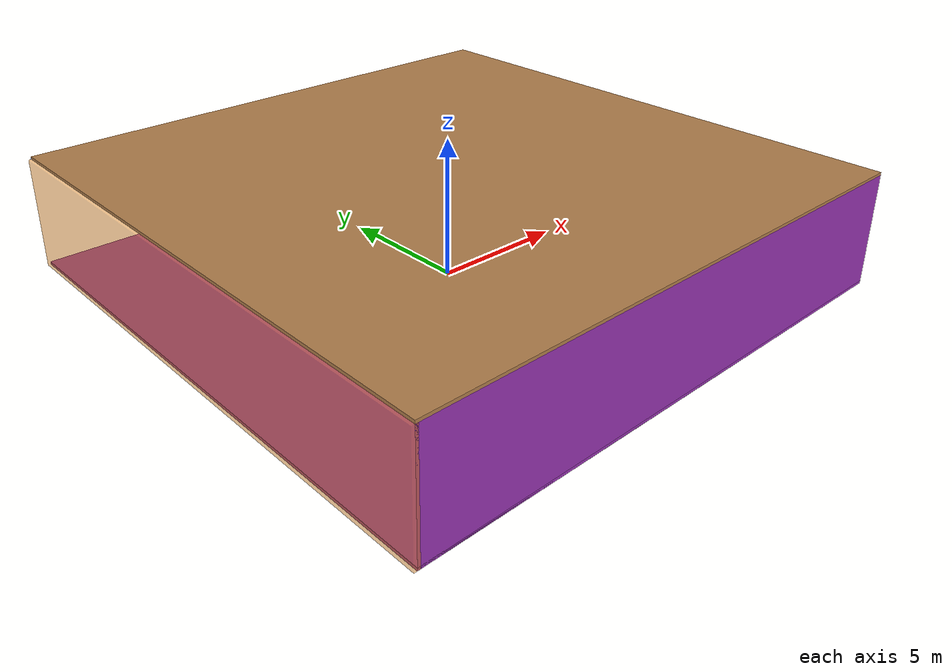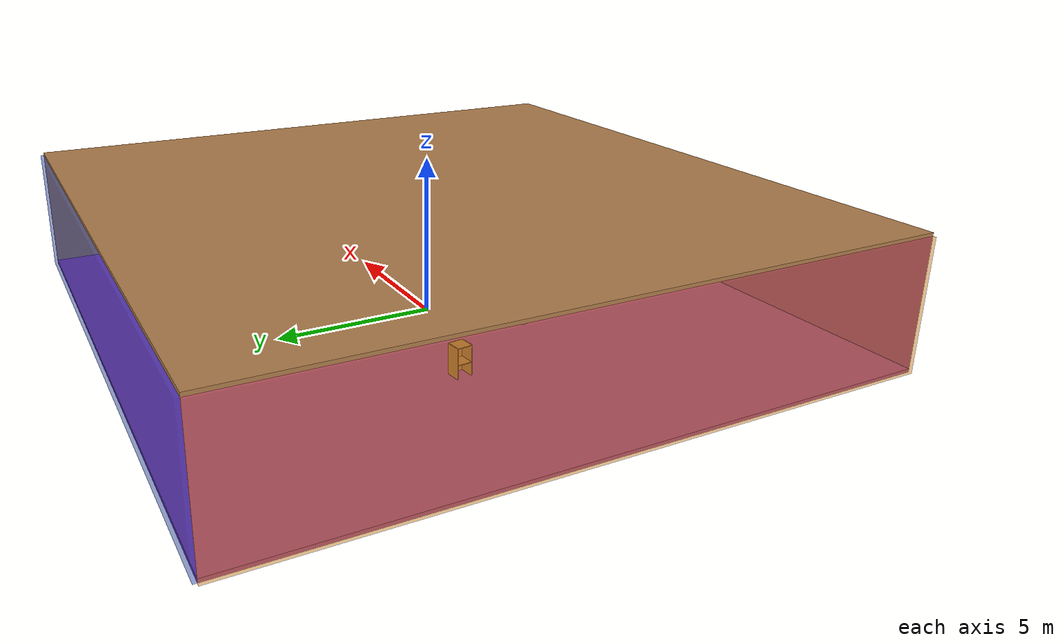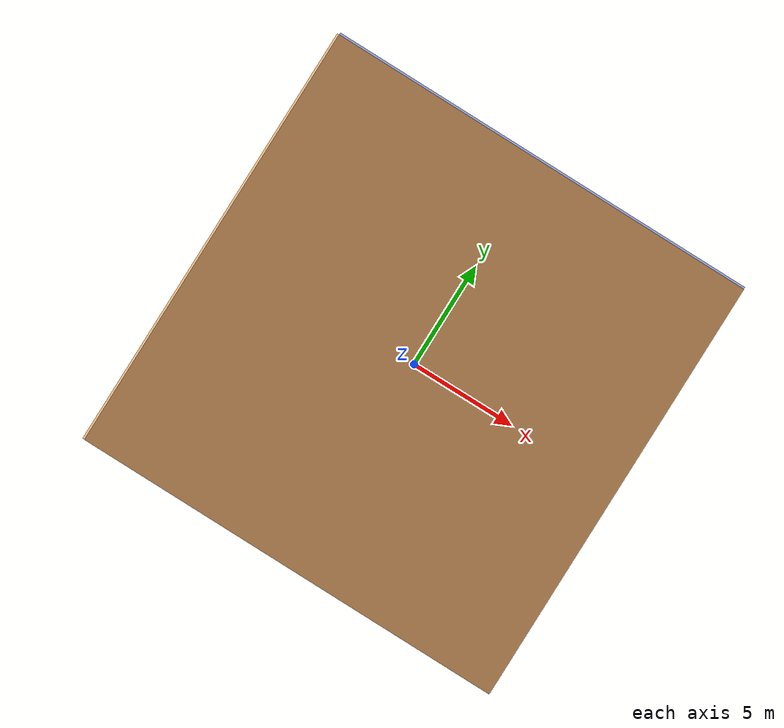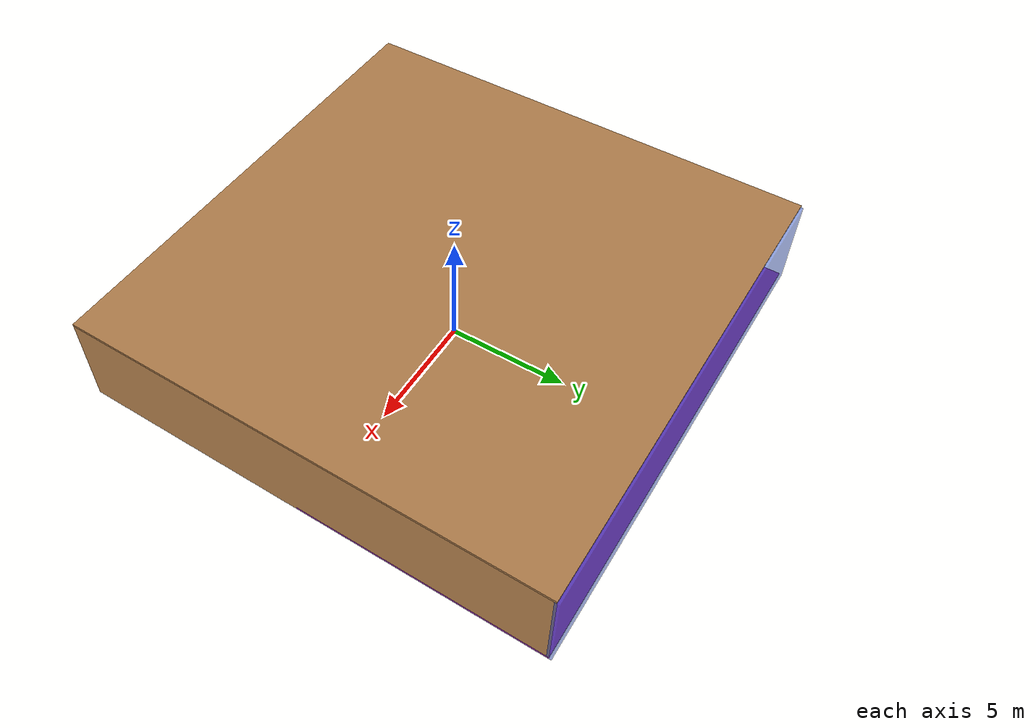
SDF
<sdf version="1.4">
 <world name="default">
  <physics type="ode">
   <max_step_size>0.001</max_step_size>
   <real_time_factor>1</real_time_factor>
   <real_time_update_rate>1000</real_time_update_rate>
   <gravity>0 0 -9.8</gravity>
  </physics>
  <scene><ambient>0.4 0.4 0.4 1</ambient><background>0.7 0.7 0.7 1</background><shadows>1</shadows></scene>
  <model name="Surrounding">
   <static>1</static>
   <link name="Ceiling">
    <collision name="Ceiling_Collision"><geometry><box><size>20 20 0.1</size></box></geometry></collision>
    <visual name="Ceiling_Visual">
     <geometry><box><size>20 20 0.1</size></box></geometry>
     <material>
      <script><uri>file://media/materials/scripts/gazebo.material</uri><name>Gazebo/WoodPallet</name></script>
     </material>
    </visual>
    <pose>0 0 4.05 0 0 0</pose>
   </link>
   <link name="Wall_South">
    <collision name="Wall_South_Collision">
     <geometry><box><size>20 0 4</size></box></geometry>
     <pose>0 0 2 0 -0 0</pose>
    </collision>
    <visual name="Wall_South_Visual">
     <pose>0 0 2 0 -0 0</pose>
     <geometry><box><size>20 0 4</size></box></geometry>
     <material>
      <script><uri>file://media/materials/scripts/gazebo.material</uri><name>Gazebo/Purple</name></script>
     </material>
    </visual>
    <velocity_decay><linear>0</linear><angular>0</angular></velocity_decay>
    <pose>0 -10 0 0 -0 0</pose>
   </link>
   <link name="Wall_East">
    <collision name="Wall_21_Collision">
     <geometry><box><size>20 0 4</size></box></geometry>
     <pose>0 0 2 0 -0 0</pose>
    </collision>
    <visual name="Wall_21_Visual">
     <pose>0 0 2 0 -0 0</pose>
     <geometry><box><size>20 0 4</size></box></geometry>
     <material>
      <script><uri>file://media/materials/scripts/gazebo.material</uri><name>Gazebo/WoodPallet</name></script>
     </material>
    </visual>
    <velocity_decay><linear>0</linear><angular>0</angular></velocity_decay>
    <pose>10 0 0 0 -0 1.5708</pose>
   </link>
   <link name="Wall_North">
    <collision name="Wall_22_Collision">
     <geometry><box><size>20 0.2 4</size></box></geometry>
     <pose>0 0 2 0 -0 0</pose>
    </collision>
    <visual name="Wall_22_Visual">
     <pose>0 0 2 0 -0 0</pose>
     <geometry><box><size>20 0.2 4</size></box></geometry>
     <material>
      <script><uri>file://media/materials/scripts/gazebo.material</uri><name>Gazebo/BlueTransparent</name></script>
     </material>
    </visual>
    <velocity_decay><linear>0</linear><angular>0</angular></velocity_decay>
    <pose>0 10 0 0 -0 0</pose>
   </link>
   <link name="Wall_West">
    <collision name="Wall_23_Collision">
     <geometry><box><size>20 0.2 4</size></box></geometry>
     <pose>0 0 2 0 -0 0</pose>
    </collision>
    <visual name="Wall_23_Visual">
     <pose>0 0 2 0 -0 0</pose>
     <geometry><box><size>20 0.2 4</size></box></geometry>
     <material>
      <script>
       <uri>file://media/materials/scripts/gazebo.material</uri>
       <name>Gazebo/OrangeTransparent</name>
      </script>
     </material>
    </visual>
    <velocity_decay><linear>0</linear><angular>0</angular></velocity_decay>
    <pose>-10 0 0 0 0 -1.5708</pose>
   </link>
   <link name="Ground_link">
    <collision name="collision">
     <pose>0 0 .05 0 -0 0</pose>
     <geometry><box><size>20 20 0.1</size></box></geometry>
    </collision>
    <visual name="visual">
     <pose>0 0 .05 0 -0 0</pose>
     <geometry><box><size>20 20 0.1</size></box></geometry>
     <material>
      <script><uri>file://media/materials/scripts/gazebo.material</uri><name>Gazebo/Purple</name></script>
     </material>
    </visual>
   </link>
   <static>1</static>
  </model>
  <spherical_coordinates>
   <surface_model>EARTH_WGS84</surface_model>
   <latitude_deg>0</latitude_deg>
   <longitude_deg>0</longitude_deg>
   <elevation>0</elevation>
   <heading_deg>0</heading_deg>
  </spherical_coordinates>
  <light name="lightball_0" type="diffuse">
   <diffuse>0.8 0.8 0.8 1</diffuse>
   <specular>0.2 0.2 0.2 1</specular>
   <attenuation>
    <range>100</range>
    <constant>0.7</constant>
    <linear>0.01</linear>
    <quadratic>0.001</quadratic>
   </attenuation>
   <direction>-0.5 0.1 -0.9</direction>
   <pose>5.0575796848 -1.7781141986 2.20632380316 0 0 0</pose>
  </light>
  <light name="lightball_1" type="diffuse">
   <diffuse>0.8 0.8 0.8 1</diffuse>
   <specular>0.2 0.2 0.2 1</specular>
   <attenuation>
    <range>100</range>
    <constant>0.7</constant>
    <linear>0.01</linear>
    <quadratic>0.001</quadratic>
   </attenuation>
   <direction>-0.5 0.1 -0.9</direction>
   <pose>-4.88842782709 -3.4199845547 1.44463591141 0 0 0</pose>
  </light>
  <light name="lightball_2" type="diffuse">
   <diffuse>0.8 0.8 0.8 1</diffuse>
   <specular>0.2 0.2 0.2 1</specular>
   <attenuation>
    <range>100</range>
    <constant>0.7</constant>
    <linear>0.01</linear>
    <quadratic>0.001</quadratic>
   </attenuation>
   <direction>-0.5 0.1 -0.9</direction>
   <pose>-9.56860342473 -5.53081033545 1.86291729882 0 0 0</pose>
  </light>
  <light name="lightball_3" type="diffuse">
   <diffuse>0.8 0.8 0.8 1</diffuse>
   <specular>0.2 0.2 0.2 1</specular>
   <attenuation>
    <range>100</range>
    <constant>0.7</constant>
    <linear>0.01</linear>
    <quadratic>0.001</quadratic>
   </attenuation>
   <direction>-0.5 0.1 -0.9</direction>
   <pose>-0.522427293207 5.45893110561 3.03858272168 0 0 0</pose>
  </light>
  <light name="lightball_4" type="diffuse">
   <diffuse>0.8 0.8 0.8 1</diffuse>
   <specular>0.2 0.2 0.2 1</specular>
   <attenuation>
    <range>100</range>
    <constant>0.7</constant>
    <linear>0.01</linear>
    <quadratic>0.001</quadratic>
   </attenuation>
   <direction>-0.5 0.1 -0.9</direction>
   <pose>-3.27426791284 3.20704040704 2.68947353787 0 0 0</pose>
  </light>
  <light name="lightball_5" type="diffuse">
   <diffuse>0.8 0.8 0.8 1</diffuse>
   <specular>0.2 0.2 0.2 1</specular>
   <attenuation>
    <range>100</range>
    <constant>0.7</constant>
    <linear>0.01</linear>
    <quadratic>0.001</quadratic>
   </attenuation>
   <direction>-0.5 0.1 -0.9</direction>
   <pose>-9.79201952095 -6.4555315167 2.12142355513 0 0 0</pose>
  </light>
  <light name="lightball_6" type="diffuse">
   <diffuse>0.8 0.8 0.8 1</diffuse>
   <specular>0.2 0.2 0.2 1</specular>
   <attenuation>
    <range>100</range>
    <constant>0.7</constant>
    <linear>0.01</linear>
    <quadratic>0.001</quadratic>
   </attenuation>
   <direction>-0.5 0.1 -0.9</direction>
   <pose>-3.65313194919 7.02247822172 3.31458048965 0 0 0</pose>
  </light>
  <light name="lightball_7" type="diffuse">
   <diffuse>0.8 0.8 0.8 1</diffuse>
   <specular>0.2 0.2 0.2 1</specular>
   <attenuation>
    <range>100</range>
    <constant>0.7</constant>
    <linear>0.01</linear>
    <quadratic>0.001</quadratic>
   </attenuation>
   <direction>-0.5 0.1 -0.9</direction>
   <pose>6.87816296354 9.24233765822 1.92144740555 0 0 0</pose>
  </light>
  <light name="lightball_8" type="diffuse">
   <diffuse>0.8 0.8 0.8 1</diffuse>
   <specular>0.2 0.2 0.2 1</specular>
   <attenuation>
    <range>100</range>
    <constant>0.7</constant>
    <linear>0.01</linear>
    <quadratic>0.001</quadratic>
   </attenuation>
   <direction>-0.5 0.1 -0.9</direction>
   <pose>-6.00420886807 -3.97670119303 1.63923970535 0 0 0</pose>
  </light>
  <light name="lightball_9" type="diffuse">
   <diffuse>0.8 0.8 0.8 1</diffuse>
   <specular>0.2 0.2 0.2 1</specular>
   <attenuation>
    <range>100</range>
    <constant>0.7</constant>
    <linear>0.01</linear>
    <quadratic>0.001</quadratic>
   </attenuation>
   <direction>-0.5 0.1 -0.9</direction>
   <pose>-3.99223298106 0.589205806266 2.92452645858 0 0 0</pose>
  </light>
  <light name="lightball_10" type="diffuse">
   <diffuse>0.8 0.8 0.8 1</diffuse>
   <specular>0.2 0.2 0.2 1</specular>
   <attenuation>
    <range>100</range>
    <constant>0.7</constant>
    <linear>0.01</linear>
    <quadratic>0.001</quadratic>
   </attenuation>
   <direction>-0.5 0.1 -0.9</direction>
   <pose>-9.42322336935 -9.55322391428 0.947502791415 0 0 0</pose>
  </light>
  <light name="lightball_11" type="diffuse">
   <diffuse>0.8 0.8 0.8 1</diffuse>
   <specular>0.2 0.2 0.2 1</specular>
   <attenuation>
    <range>100</range>
    <constant>0.7</constant>
    <linear>0.01</linear>
    <quadratic>0.001</quadratic>
   </attenuation>
   <direction>-0.5 0.1 -0.9</direction>
   <pose>-0.0932386036465 -5.67006361291 2.18052071565 0 0 0</pose>
  </light>
  <include><uri>model://cabinet</uri><pose>-4.66826729835 1.3406439666 0 0 0 0.123818692845</pose></include>
  <include>
   <uri>model://textured_shapes</uri>
   <pose>-0.415666304089 -6.5761613563 0 0 0 2.72248004683</pose>
  </include>
  <include>
   <uri>model://textured_shapes</uri>
   <pose>-1.27016987071 -3.32940780704 0 0 0 0.557310179489</pose>
  </include>
  <include><uri>model://table</uri><pose>8.51278682871 3.35157803289 0 0 0 0.57166063253</pose></include>
 </world>
</sdf>

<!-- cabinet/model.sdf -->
<sdf version="1.5">
  <model name="cabinet">
    <static>true</static>
    <link name="cabinet_bottom_plate">
      <inertial>
        <pose>0 0 -1 0 0 0</pose>
        <inertia>
          <ixx>2.050000</ixx>
          <ixy>0</ixy>
          <ixz>0</ixz>
          <iyy>2.050000</iyy>
          <iyz>0</iyz>
          <izz>2.050000</izz>
        </inertia>
        <mass>25.000000</mass>
      </inertial>
      <collision name="cabinet_bottom_plate_geom">
        <pose>0 0 0.010000 0 0 0</pose>
        <geometry>
          <box>
            <size>0.450000 0.450000 0.020000</size>
          </box>
        </geometry>
      </collision>
      <visual name="cabinet_bottom_plate_geom_visual">
        <pose>0 0 0.010000 0 0 0</pose>
        <geometry>
          <box>
            <size>0.450000 0.450000 0.020000</size>
          </box>
        </geometry>
        <material>
          <script>
            <uri>model://media/materials/scripts/gazebo.material</uri>
            <name>Gazebo/Wood</name>
          </script>
        </material>
      </visual>
      <collision name="cabinet_bottom_plate_geom_cabinet_back_plate">
        <pose>0.235000 0 0.510000 0 0 0</pose>
        <geometry>
          <box>
            <size>0.020000 0.450000 1.020000</size>
          </box>
        </geometry>
      </collision>
      <visual name="cabinet_bottom_plate_geom_cabinet_back_plate_visual">
        <pose>0.235000 0 0.510000 0 0 0</pose>
        <geometry>
          <box>
            <size>0.020000 0.450000 1.020000</size>
          </box>
        </geometry>
        <material>
          <script>
            <uri>model://media/materials/scripts/gazebo.material</uri>
            <name>Gazebo/Wood</name>
          </script>
        </material>
      </visual>
      <collision name="cabinet_bottom_plate_geom_cabinet_left_plate">
        <pose>0 0.235000 0.510000 0 0 0</pose>
        <geometry>
          <box>
            <size>0.450000 0.020000 1.020000</size>
          </box>
        </geometry>
      </collision>
      <visual name="cabinet_bottom_plate_geom_cabinet_left_plate_visual">
        <pose>0 0.235000 0.510000 0 0 0</pose>
        <geometry>
          <box>
            <size>0.450000 0.020000 1.020000</size>
          </box>
        </geometry>
        <material>
          <script>
            <uri>model://media/materials/scripts/gazebo.material</uri>
            <name>Gazebo/Wood</name>
          </script>
        </material>
      </visual>
      <collision name="cabinet_bottom_plate_geom_cabinet_middle_plate">
        <pose>0 0 0.510000 0 0 0</pose>
        <geometry>
          <box>
            <size>0.450000 0.450000 0.020000</size>
          </box>
        </geometry>
      </collision>
      <visual name="cabinet_bottom_plate_geom_cabinet_middle_plate_visual">
        <pose>0 0 0.510000 0 0 0</pose>
        <geometry>
          <box>
            <size>0.450000 0.450000 0.020000</size>
          </box>
        </geometry>
        <material>
          <script>
            <uri>model://media/materials/scripts/gazebo.material</uri>
            <name>Gazebo/Wood</name>
          </script>
        </material>
      </visual>
      <collision name="cabinet_bottom_plate_geom_cabinet_right_plate">
        <pose>0 -0.235000 0.510000 0 0 0</pose>
        <geometry>
          <box>
            <size>0.450000 0.020000 1.020000</size>
          </box>
        </geometry>
      </collision>
      <visual name="cabinet_bottom_plate_geom_cabinet_right_plate_visual">
        <pose>0 -0.235000 0.510000 0 0 0</pose>
        <geometry>
          <box>
            <size>0.450000 0.020000 1.020000</size>
          </box>
        </geometry>
        <material>
          <script>
            <uri>model://media/materials/scripts/gazebo.material</uri>
            <name>Gazebo/Wood</name>
          </script>
        </material>
      </visual>
      <collision name="cabinet_bottom_plate_geom_cabinet_top_plate">
        <pose>0 0 1.010000 0 0 0</pose>
        <geometry>
          <box>
            <size>0.450000 0.450000 0.020000</size>
          </box>
        </geometry>
      </collision>
      <visual name="cabinet_bottom_plate_geom_cabinet_top_plate_visual">
        <pose>0 0 1.010000 0 0 0</pose>
        <geometry>
          <box>
            <size>0.450000 0.450000 0.020000</size>
          </box>
        </geometry>
        <material>
          <script>
            <uri>model://media/materials/scripts/gazebo.material</uri>
            <name>Gazebo/Wood</name>
          </script>
        </material>
      </visual>
    </link>
  </model>
</sdf>

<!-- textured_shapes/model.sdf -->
<sdf version="1.6">
  <model name="textured_shapes">
    <pose>0 0 0.5 0 0 0</pose>
    <link name="box">
      <pose>0 -1.5 0 0 0 0</pose>
      <collision name="collision">
        <geometry>
          <box>
            <size>1 1 1</size>
          </box>
        </geometry>
      </collision>
      <visual name="visual">
        <geometry>
          <box>
            <size>1 1 1</size>
          </box>
        </geometry>
        <material>
          <script>
            <uri>model://../model_source/models/textured_shapes/materials/scripts</uri>
            <uri>model://../model_source/models/textured_shapes/materials/textures</uri>
            <name>TexturedShape/Squares</name>
          </script>
        </material>
      </visual>
    </link>
    <link name="sphere">
      <collision name="collision">
        <geometry>
          <sphere>
            <radius>0.5</radius>
          </sphere>
        </geometry>
      </collision>
      <visual name="visual">
        <geometry>
          <sphere>
            <radius>0.5</radius>
          </sphere>
        </geometry>
        <material>
          <script>
            <uri>model://../model_source/models/textured_shapes/materials/scripts</uri>
            <uri>model://../model_source/models/textured_shapes/materials/textures</uri>
            <name>TexturedShape/Squares</name>
          </script>
        </material>
      </visual>
    </link>
    <link name="cylinder">
      <pose>0 1.5 0 0 0 0</pose>
      <collision name="collision">
        <geometry>
          <cylinder>
            <radius>0.5</radius>
            <length>1</length>
          </cylinder>
        </geometry>
      </collision>
      <visual name="visual">
        <geometry>
          <cylinder>
            <radius>0.5</radius>
            <length>1</length>
          </cylinder>
        </geometry>
        <material>
          <script>
            <uri>model://../model_source/models/textured_shapes/materials/scripts</uri>
            <uri>model://../model_source/models/textured_shapes/materials/textures</uri>
            <name>TexturedShape/Squares</name>
          </script>
        </material>
      </visual>
    </link>
  </model>
</sdf>

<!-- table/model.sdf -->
<sdf version="1.5">
  <model name="table">
    <static>true</static>
    <link name="link">
      <collision name="surface">
        <pose>0 0 1.0 0 0 0</pose>
        <geometry>
          <box>
            <size>1.5 0.8 0.03</size>
          </box>
        </geometry>
        <surface>
          <friction>
            <ode>
              <mu>0.6</mu>
              <mu2>0.6</mu2>
            </ode>
          </friction>
        </surface>
      </collision>
      <visual name="visual1">
        <pose>0 0 1.0 0 0 0</pose>
        <geometry>
          <box>
            <size>1.5 0.8 0.03</size>
          </box>
        </geometry>
        <material>
          <script>
            <uri>model://media/materials/scripts/gazebo.material</uri>
            <name>Gazebo/Wood</name>
          </script>
        </material>
      </visual>
      <collision name="front_left_leg">
        <pose>0.68 0.38 0.5 0 0 0</pose>
        <geometry>
          <cylinder>
            <radius>0.02</radius>
            <length>1.0</length>
          </cylinder>
        </geometry>
      </collision>
      <visual name="front_left_leg">
        <pose>0.68 0.38 0.5 0 0 0</pose>
        <geometry>
          <cylinder>
            <radius>0.02</radius>
            <length>1.0</length>
          </cylinder>
        </geometry>
        <material>
          <script>
            <uri>model://media/materials/scripts/gazebo.material</uri>
            <name>Gazebo/Grey</name>
          </script>
        </material>
      </visual>
      <collision name="front_right_leg">
        <pose>0.68 -0.38 0.5 0 0 0</pose>
        <geometry>
          <cylinder>
            <radius>0.02</radius>
            <length>1.0</length>
          </cylinder>
        </geometry>
      </collision>
      <visual name="front_right_leg">
        <pose>0.68 -0.38 0.5 0 0 0</pose>
        <geometry>
          <cylinder>
            <radius>0.02</radius>
            <length>1.0</length>
          </cylinder>
        </geometry>
        <material>
          <script>
            <uri>model://media/materials/scripts/gazebo.material</uri>
            <name>Gazebo/Grey</name>
          </script>
        </material>
      </visual>
      <collision name="back_right_leg">
        <pose>-0.68 -0.38 0.5 0 0 0</pose>
        <geometry>
          <cylinder>
            <radius>0.02</radius>
            <length>1.0</length>
          </cylinder>
        </geometry>
      </collision>
      <visual name="back_right_leg">
        <pose>-0.68 -0.38 0.5 0 0 0</pose>
        <geometry>
          <cylinder>
            <radius>0.02</radius>
            <length>1.0</length>
          </cylinder>
        </geometry>
        <material>
          <script>
            <uri>model://media/materials/scripts/gazebo.material</uri>
            <name>Gazebo/Grey</name>
          </script>
        </material>
      </visual>
      <collision name="back_left_leg">
        <pose>-0.68 0.38 0.5 0 0 0</pose>
        <geometry>
          <cylinder>
            <radius>0.02</radius>
            <length>1.0</length>
          </cylinder>
        </geometry>
      </collision>
      <visual name="back_left_leg">
        <pose>-0.68 0.38 0.5 0 0 0</pose>
        <geometry>
          <cylinder>
            <radius>0.02</radius>
            <length>1.0</length>
          </cylinder>
        </geometry>
        <material>
          <script>
            <uri>model://media/materials/scripts/gazebo.material</uri>
            <name>Gazebo/Grey</name>
          </script>
        </material>
      </visual>
    </link>
  </model>
</sdf>
